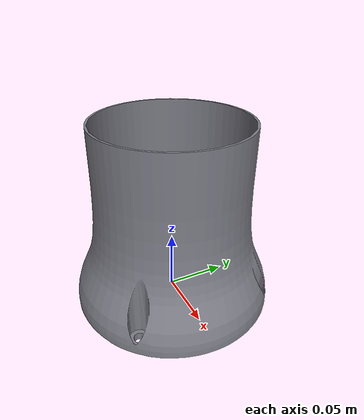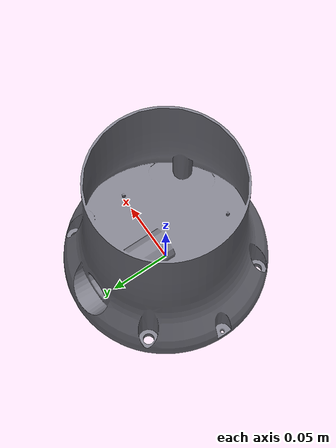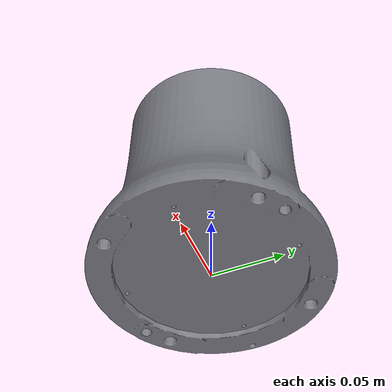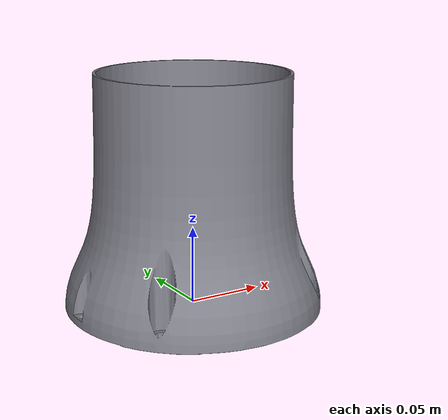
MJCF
<mujoco model="link0">
  <default>
    <default class="visual">
      <geom group="2" type="mesh" contype="0" conaffinity="0"/>
    </default>
    <default class="collision">
      <geom group="3" type="mesh"/>
    </default>
  </default>
  <asset>
    <material name="robot" specular="0.600013" shininess="0.015686281" rgba="0.487364 0.487364 0.527718 1.000000"/>
    <mesh file="link0.obj"/>
  </asset>
  <worldbody>
    <body name="link0">
      <geom material="robot" mesh="link0" class="visual"/>
      <geom mesh="link0" class="collision"/>
    </body>
  </worldbody>
</mujoco>
